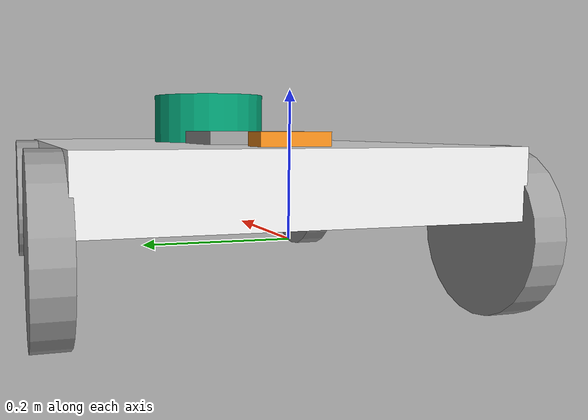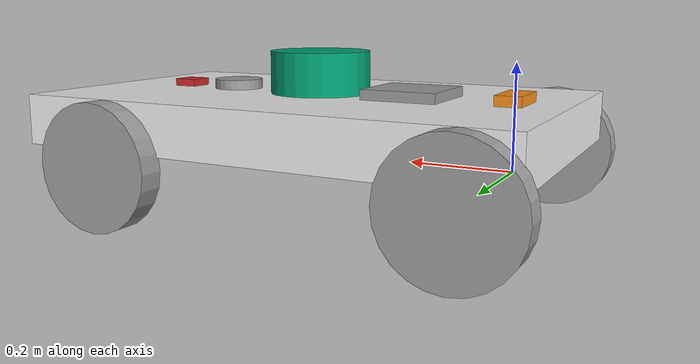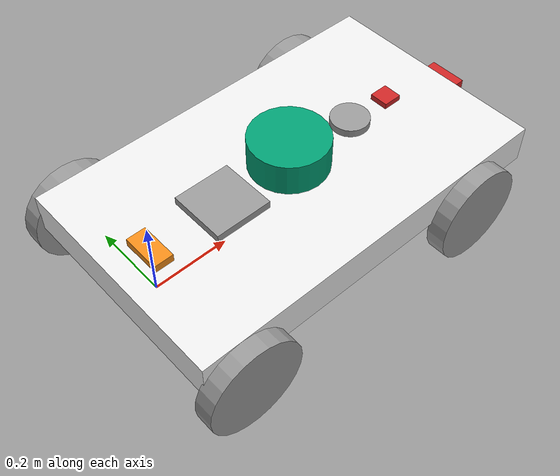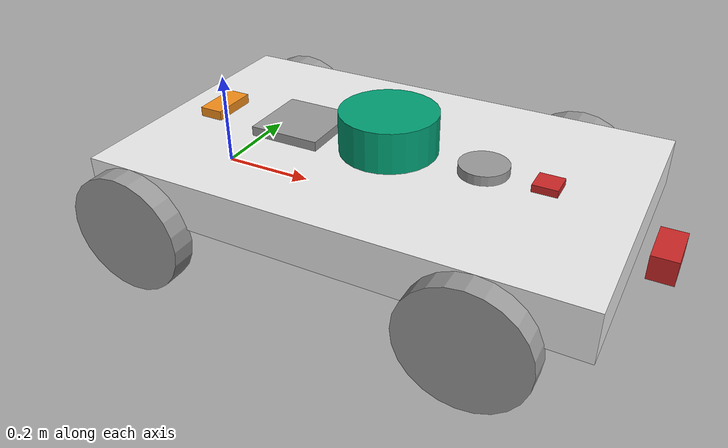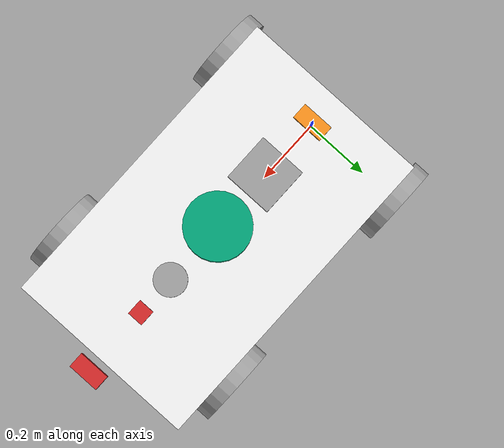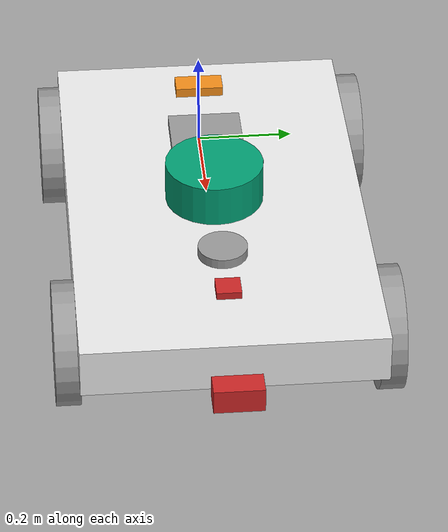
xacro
<?xml version='1.0'?>

<robot name="robot" xmlns:xacro="http://www.ros.org/wiki/xacro">

  <xacro:include filename="$(find robot)/urdf/robot.gazebo" />

  <!-- COLOR REFERENCE -->

  <gazebo reference="fl_wheel">
    <material>Gazebo/Grey</material>
  </gazebo>

  <gazebo reference="fr_wheel">
    <material>Gazebo/Grey</material>
  </gazebo>

  <gazebo reference="bl_wheel">
    <material>Gazebo/Grey</material>
  </gazebo>

  <gazebo reference="br_wheel">
    <material>Gazebo/Grey</material>
  </gazebo>

  <gazebo reference="camera">
    <material>Gazebo/Red</material>
  </gazebo>

  <gazebo reference="gps_link">
    <material>Gazebo/Grey</material>
  </gazebo>

  <gazebo reference="imu_link">
    <material>Gazebo/Grey</material>
  </gazebo>

  <gazebo reference="chassis">
    <material>Gazebo/White</material>
  </gazebo>

  <gazebo reference="hokuyo_link">
    <material>Gazebo/Red</material>
  </gazebo>

  <gazebo reference="ZED2_link">
    <material>Gazebo/Orange</material>
  </gazebo>

  <gazebo reference="kinect_link">
    <material>Gazebo/Red</material>
  </gazebo>

  <!-- LINKS -->

  <!-- ROBOT FOOTPRINT -->

  <link name="robot_footprint"></link>

  <joint name="robot_footprint_joint" type="fixed">
    <origin xyz="0 0 0" rpy="0 0 0" />
    <parent link="robot_footprint" />
    <child link="chassis" />
  </joint>

  <!-- CHASSIS -->

  <link name='chassis'>
    <pose>0 0 0.1 0 0 0</pose>

    <inertial>
      <mass value="15.0" />
      <origin xyz="0.0 0 0" rpy=" 0 0 0" />
      <inertia
        ixx="0.1" ixy="0" ixz="0"
        iyy="0.1" iyz="0"
        izz="0.1"
      />
    </inertial>

    <collision>
      <origin xyz="0.4 0 0.075" rpy=" 0 0 0" />
      <geometry>
        <box size="1.0 0.6 0.1" />
      </geometry>

    </collision>

    <visual>
      <origin xyz="0.4 0 0.075" rpy=" 0 0 0" />
      <geometry>
        <box size="1.0 0.6 0.1" />
      </geometry>

    </visual>

  </link>

  <!-- WHEELS -->

  <!-- FRONT RIGHT -->

  <link name="fr_wheel">
    <inertial>
      <mass value="5" />
      <origin xyz="0 0 0" rpy="0 1.5707 1.5707" />
      <inertia
        ixx="0.1" ixy="0.0" ixz="0.0"
        iyy="0.1" iyz="0.0"
        izz="0.1"
      />
    </inertial>

    <collision>
      <origin xyz="0 0 0" rpy="0 1.5707 1.5707" />
      <geometry>
        <cylinder radius="0.125" length="0.05" />
      </geometry>
    </collision>

    <visual>
      <origin xyz="0 0 0" rpy="0 1.5707 1.5707" />
      <geometry>
        <cylinder radius="0.125" length="0.05" />
      </geometry>
    </visual>

  </link>

  <!-- FRONT LEFT -->

  <link name="fl_wheel">
    <inertial>
      <mass value="5" />
      <origin xyz="0 0 0" rpy="0 1.5707 1.5707" />
      <inertia
        ixx="0.1" ixy="0.0" ixz="0.0"
        iyy="0.1" iyz="0.0"
        izz="0.1"
      />
    </inertial>

    <collision>
      <origin xyz="0 0 0" rpy="0 1.5707 1.5707" />
      <geometry>
        <cylinder radius="0.125" length="0.05" />
      </geometry>
    </collision>

    <visual>
      <origin xyz="0 0 0" rpy="0 1.5707 1.5707" />
      <geometry>
        <cylinder radius="0.125" length="0.05" />
      </geometry>
    </visual>

  </link>

  <!-- BACK RIGHT -->

  <link name="br_wheel">
    <inertial>
      <mass value="5" />
      <origin xyz="0 0 0" rpy="0 1.5707 1.5707" />
      <inertia
        ixx="0.1" ixy="0.0" ixz="0.0"
        iyy="0.1" iyz="0.0"
        izz="0.1"
      />
    </inertial>

    <collision>
      <origin xyz="0 0 0" rpy="0 1.5707 1.5707" />
      <geometry>
        <cylinder radius="0.125" length="0.05" />
      </geometry>
    </collision>

    <visual>
      <origin xyz="0 0 0" rpy="0 1.5707 1.5707" />
      <geometry>
        <cylinder radius="0.125" length="0.05" />
      </geometry>
    </visual>

  </link>

  <!-- BACK LEFT -->

  <link name="bl_wheel">
    <inertial>
      <mass value="5" />
      <origin xyz="0 0 0" rpy="0 1.5707 1.5707" />
      <inertia
        ixx="0.1" ixy="0.0" ixz="0.0"
        iyy="0.1" iyz="0.0"
        izz="0.1"
      />
    </inertial>

    <collision>
      <origin xyz="0 0 0" rpy="0 1.5707 1.5707" />
      <geometry>
        <cylinder radius="0.125" length="0.05" />
      </geometry>
    </collision>

    <visual>
      <origin xyz="0 0 0" rpy="0 1.5707 1.5707" />
      <geometry>
        <cylinder radius="0.125" length="0.05" />
      </geometry>
    </visual>

  </link>

  <!-- CAMERA -->

  <link name="camera">
    <inertial>
      <mass value="0.1" />
      <origin xyz="0 0 0.075" rpy="0 0 0" />
      <inertia
        ixx="1e-6" ixy="0.0" ixz="0.0"
        iyy="1e-6" iyz="0.0"
        izz="1e-6"
      />
    </inertial>

    <collision>
      <origin xyz="0 0 0.005" rpy="0 0 0" />
      <geometry>
        <box size="0.05 0.05 0.03" />
      </geometry>
    </collision>

    <visual>
      <origin xyz="0 0 0.005" rpy="0 0 0" />
      <geometry>
        <box size="0.05 0.05 0.03" />
      </geometry>
    </visual>

  </link>

  <!-- LIDAR -->

  <!-- GPS -->

  <link name="gps_link">
    <collision>
      <origin xyz="0 0 0.1" rpy="0 0 0" />
      <geometry>
        <cylinder radius="0.05" length="0.03" />
      </geometry>
    </collision>

    <visual>
      <origin xyz="0 0 0.1" rpy="0 0 0" />
      <geometry>
        <cylinder radius="0.05" length="0.03" />
      </geometry>
    </visual>

    <inertial>
      <origin xyz="0 0 0.1" rpy="0 0 0" />
      <mass value="1" />
      <inertia
        ixx="1.0" ixy="0.0" ixz="0.0"
        iyy="1.0" iyz="0.0"
        izz="1.0" />
    </inertial>
  </link>

  <!-- IMU -->

  <link name="imu_link">
    <visual>
      <geometry>
        <box size="0.15 0.15 0.05" />
      </geometry>
    </visual>
    <collision>
      <geometry>
        <box size="0.15 0.15 0.05" />
      </geometry>
    </collision>
    <inertial>
      <mass value="1e-5" />
      <origin xyz="0 0 0" rpy="0 0 0" />
      <inertia ixx="1e-6" ixy="0" ixz="0" iyy="1e-6" iyz="0" izz="1e-6" />
    </inertial>
  </link>

  <!-- ZED 2 -->

  <link name="ZED2_link">
    <visual>
      <geometry>
        <box size="0.05 0.1 0.05" />
      </geometry>
    </visual>
    <collision>
      <geometry>
        <box size="0.05 0.1 0.05" />
      </geometry>
    </collision>
    <inertial>
      <mass value="1e-5" />
      <origin xyz="0 0 0" rpy="0 0 0" />
      <inertia ixx="1e-6" ixy="0" ixz="0" iyy="1e-6" iyz="0" izz="1e-6" />
    </inertial>
  </link>

  <!-- JOINTS -->

  <joint name="camera_joint" type="fixed">
    <origin xyz="0.725 0. 0.12" rpy="0 0 0" />
    <parent link="chassis" />
    <child link="camera" />
    <axis xyz="0 1 0" />
  </joint>

  <joint type="continuous" name="fl_wheel_joint">
    <origin xyz="0 0.32 0" rpy="0 0 0" />
    <parent link="chassis" />
    <child link="fl_wheel" />
    <axis xyz="0 1 0" rpy="0 0 0" />
    <limit effort="10000" velocity="1000" />
    <dynamics damping="1.0" friction="1.0" />
  </joint>

  <joint type="continuous" name="fr_wheel_joint">
    <origin xyz="0 -0.32 0" rpy="0 0 0" />
    <parent link="chassis" />
    <child link="fr_wheel" />
    <axis xyz="0 1 0" rpy="0 0 0" />
    <limit effort="10000" velocity="1000" />
    <dynamics damping="1.0" friction="1.0" />
  </joint>

  <joint type="continuous" name="bl_wheel_joint">
    <origin xyz="0.70 0.32 0" rpy="0 0 0" />
    <parent link="chassis" />
    <child link="bl_wheel" />
    <axis xyz="0 1 0" rpy="0 0 0" />
    <limit effort="10000" velocity="1000" />
    <dynamics damping="1.0" friction="1.0" />
  </joint>

  <joint type="continuous" name="br_wheel_joint">
    <origin xyz="0.70 -0.32 0" rpy="0 0 0" />
    <parent link="chassis" />
    <child link="br_wheel" />
    <axis xyz="0 1 0" rpy="0 0 0" />
    <limit effort="10000" velocity="1000" />
    <dynamics damping="1.0" friction="1.0" />
  </joint>

  <joint name="gps_joint" type="fixed">
    <origin xyz="0.6 0.0 0.03" rpy="0 0 0" />
    <parent link="chassis" />
    <child link="gps_link" />
    <axis xyz="0 1 0" />
  </joint>

  <joint name="imu" type="fixed">
    <origin xyz="0.2 0 0.12" rpy="0 0 0" />
    <parent link="chassis" />
    <child link="imu_link" />
    <axis xyz="0 1 0" />
  </joint>

  <joint name="ZED2_joint" type="fixed">
    <origin xyz="-0.0 0 0.12" rpy="0 0 0" />
    <parent link="chassis" />
    <child link="ZED2_link" />
    <axis xyz="0 1 0" />
  </joint>

  <!-- LIDAR -->
  <link name="hokuyu_link">
    <collision>
      <origin xyz="0 0 0" rpy="0 0 0" />
      <geometry>
        <cylinder length="0.3" radius="0.1" />
      </geometry>
    </collision>

    <visual>
      <origin xyz="0 0 0" rpy="0 0 0" />
      <geometry>
        <cylinder length="0.1" radius="0.1" />
      </geometry>
    </visual>

    <inertial>
      <mass value="1e-5" />
      <origin xyz="0 0 0" rpy="0 0 0" />
      <inertia ixx="1e-6" ixy="0" ixz="0" iyy="1e-6" iyz="0" izz="1e-6" />
    </inertial>
  </link>

  <joint name="hokuyu_joint" type="fixed">
    <axis xyz="0 1 0" />
    <origin xyz="0.4 0.0 0.16" rpy="0 0 0" />
    <parent link="chassis" />
    <child link="hokuyu_link" />
  </joint>

  <!-- KINECT -->
  <link name="kinect_link_optical"></link>

  <joint name="kinect_joint" type="fixed">
    <axis xyz="0 1 0" />
    <origin xyz="0.95 0.0 0.05" rpy="0 0 0 " />
    <parent link="chassis" />
    <child link="kinect_link" />
  </joint>

  <link name="kinect_link">
    <visual>
      <geometry>
        <box size="0.05 0.1 0.05" />
      </geometry>
    </visual>
  </link>

  <joint name="kinect_optical_joint" type="fixed">
    <axis xyz="0 1 0" />

    <origin xyz="0.95 0.0 0.05" rpy="${-pi/2} 0 ${-pi/2} " />
    <parent link="kinect_link" />
    <child link="kinect_link_optical" />
  </joint>

</robot>
